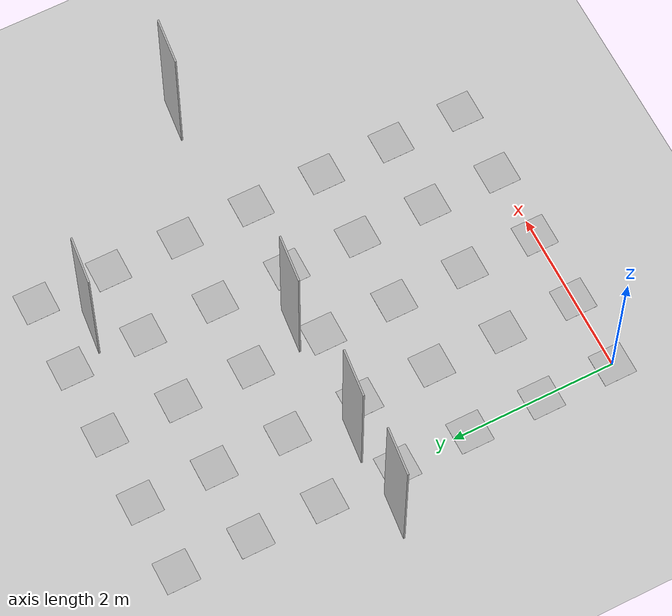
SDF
<?xml version="1.0" ?>
<sdf version="1.6">
  <world name="default">

    <!-- Солнце -->
    <light name="sun" type="directional">
      <cast_shadows>true</cast_shadows>
      <pose>0 0 10 0 0 0</pose>
      <diffuse>0.8 0.8 0.8 1</diffuse>
      <specular>0.2 0.2 0.2 1</specular>
      <attenuation>
        <range>1000</range>
        <constant>0.9</constant>
        <linear>0.01</linear>
        <quadratic>0.001</quadratic>
      </attenuation>
      <direction>-0.5 0.1 -0.9</direction>
    </light>

    <!-- Плоскость земли -->
    <include>
      <uri>model://ground_plane</uri>
    </include>

    <include>
      <uri>model://aruco_model_config</uri>
      <pose>0 0 0 0 0 0</pose>
    </include>

    <include>
      <uri>model://Human1</uri>
      <pose>3 5 0 0 0 102</pose>
    </include>

    <include>
      <uri>model://tree</uri>
      <pose>0.5 3 0 0 0 102</pose>
    </include>

    <include>
      <uri>model://tree</uri>
      <pose>2.0 3 0 0 0 102</pose>
    </include>

    <include>
      <uri>model://tree</uri>
      <pose>-0.5 3 0 0 0 102</pose>
    </include>

    <include>
      <uri>model://tree</uri>
      <pose>5 3 0 0 0 102</pose>
    </include>

  </world>
</sdf>

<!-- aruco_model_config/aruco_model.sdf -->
<sdf version="1.5">
    <model name="aruco_3_35">
        <static>true</static>
        <link name="aruco_3_35_link">

<visual name="visual_marker_3_0">
    <pose>0.0 0.0 0.0 0 0 1.5707963267948966</pose>
    <cast_shadows>false</cast_shadows>
    <geometry>
        <box>
            <size>0.39999999999999997 0.39999999999999997 1e-3</size>
        </box>
    </geometry>
    <material>
        <script>
            <uri>model://aruco_model_config/materials/scripts</uri>
            <uri>model://aruco_model_config/materials/textures</uri>
            <name>aruco/marker_3_0</name>
        </script>
    </material>
</visual>

<visual name="visual_marker_3_1">
    <pose>0.0 0.9 0.0 0 0 1.5707963267948966</pose>
    <cast_shadows>false</cast_shadows>
    <geometry>
        <box>
            <size>0.39999999999999997 0.39999999999999997 1e-3</size>
        </box>
    </geometry>
    <material>
        <script>
            <uri>model://aruco_model_config/materials/scripts</uri>
            <uri>model://aruco_model_config/materials/textures</uri>
            <name>aruco/marker_3_1</name>
        </script>
    </material>
</visual>

<visual name="visual_marker_3_2">
    <pose>0.0 1.8 0.0 0 0 1.5707963267948966</pose>
    <cast_shadows>false</cast_shadows>
    <geometry>
        <box>
            <size>0.39999999999999997 0.39999999999999997 1e-3</size>
        </box>
    </geometry>
    <material>
        <script>
            <uri>model://aruco_model_config/materials/scripts</uri>
            <uri>model://aruco_model_config/materials/textures</uri>
            <name>aruco/marker_3_2</name>
        </script>
    </material>
</visual>

<visual name="visual_marker_3_3">
    <pose>0.0 2.7 0.0 0 0 1.5707963267948966</pose>
    <cast_shadows>false</cast_shadows>
    <geometry>
        <box>
            <size>0.39999999999999997 0.39999999999999997 1e-3</size>
        </box>
    </geometry>
    <material>
        <script>
            <uri>model://aruco_model_config/materials/scripts</uri>
            <uri>model://aruco_model_config/materials/textures</uri>
            <name>aruco/marker_3_3</name>
        </script>
    </material>
</visual>

<visual name="visual_marker_3_4">
    <pose>0.0 3.6 0.0 0 0 1.5707963267948966</pose>
    <cast_shadows>false</cast_shadows>
    <geometry>
        <box>
            <size>0.39999999999999997 0.39999999999999997 1e-3</size>
        </box>
    </geometry>
    <material>
        <script>
            <uri>model://aruco_model_config/materials/scripts</uri>
            <uri>model://aruco_model_config/materials/textures</uri>
            <name>aruco/marker_3_4</name>
        </script>
    </material>
</visual>

<visual name="visual_marker_3_5">
    <pose>0.0 4.5 0.0 0 0 1.5707963267948966</pose>
    <cast_shadows>false</cast_shadows>
    <geometry>
        <box>
            <size>0.39999999999999997 0.39999999999999997 1e-3</size>
        </box>
    </geometry>
    <material>
        <script>
            <uri>model://aruco_model_config/materials/scripts</uri>
            <uri>model://aruco_model_config/materials/textures</uri>
            <name>aruco/marker_3_5</name>
        </script>
    </material>
</visual>

<visual name="visual_marker_3_6">
    <pose>0.0 5.4 0.0 0 0 1.5707963267948966</pose>
    <cast_shadows>false</cast_shadows>
    <geometry>
        <box>
            <size>0.39999999999999997 0.39999999999999997 1e-3</size>
        </box>
    </geometry>
    <material>
        <script>
            <uri>model://aruco_model_config/materials/scripts</uri>
            <uri>model://aruco_model_config/materials/textures</uri>
            <name>aruco/marker_3_6</name>
        </script>
    </material>
</visual>

<visual name="visual_marker_3_7">
    <pose>0.9 0.0 0.0 0 0 1.5707963267948966</pose>
    <cast_shadows>false</cast_shadows>
    <geometry>
        <box>
            <size>0.39999999999999997 0.39999999999999997 1e-3</size>
        </box>
    </geometry>
    <material>
        <script>
            <uri>model://aruco_model_config/materials/scripts</uri>
            <uri>model://aruco_model_config/materials/textures</uri>
            <name>aruco/marker_3_7</name>
        </script>
    </material>
</visual>

<visual name="visual_marker_3_8">
    <pose>0.9 0.9 0.0 0 0 1.5707963267948966</pose>
    <cast_shadows>false</cast_shadows>
    <geometry>
        <box>
            <size>0.39999999999999997 0.39999999999999997 1e-3</size>
        </box>
    </geometry>
    <material>
        <script>
            <uri>model://aruco_model_config/materials/scripts</uri>
            <uri>model://aruco_model_config/materials/textures</uri>
            <name>aruco/marker_3_8</name>
        </script>
    </material>
</visual>

<visual name="visual_marker_3_9">
    <pose>0.9 1.8 0.0 0 0 1.5707963267948966</pose>
    <cast_shadows>false</cast_shadows>
    <geometry>
        <box>
            <size>0.39999999999999997 0.39999999999999997 1e-3</size>
        </box>
    </geometry>
    <material>
        <script>
            <uri>model://aruco_model_config/materials/scripts</uri>
            <uri>model://aruco_model_config/materials/textures</uri>
            <name>aruco/marker_3_9</name>
        </script>
    </material>
</visual>

<visual name="visual_marker_3_10">
    <pose>0.9 2.7 0.0 0 0 1.5707963267948966</pose>
    <cast_shadows>false</cast_shadows>
    <geometry>
        <box>
            <size>0.39999999999999997 0.39999999999999997 1e-3</size>
        </box>
    </geometry>
    <material>
        <script>
            <uri>model://aruco_model_config/materials/scripts</uri>
            <uri>model://aruco_model_config/materials/textures</uri>
            <name>aruco/marker_3_10</name>
        </script>
    </material>
</visual>

<visual name="visual_marker_3_11">
    <pose>0.9 3.6 0.0 0 0 1.5707963267948966</pose>
    <cast_shadows>false</cast_shadows>
    <geometry>
        <box>
            <size>0.39999999999999997 0.39999999999999997 1e-3</size>
        </box>
    </geometry>
    <material>
        <script>
            <uri>model://aruco_model_config/materials/scripts</uri>
            <uri>model://aruco_model_config/materials/textures</uri>
            <name>aruco/marker_3_11</name>
        </script>
    </material>
</visual>

<visual name="visual_marker_3_12">
    <pose>0.9 4.5 0.0 0 0 1.5707963267948966</pose>
    <cast_shadows>false</cast_shadows>
    <geometry>
        <box>
            <size>0.39999999999999997 0.39999999999999997 1e-3</size>
        </box>
    </geometry>
    <material>
        <script>
            <uri>model://aruco_model_config/materials/scripts</uri>
            <uri>model://aruco_model_config/materials/textures</uri>
            <name>aruco/marker_3_12</name>
        </script>
    </material>
</visual>

<visual name="visual_marker_3_13">
    <pose>0.9 5.4 0.0 0 0 1.5707963267948966</pose>
    <cast_shadows>false</cast_shadows>
    <geometry>
        <box>
            <size>0.39999999999999997 0.39999999999999997 1e-3</size>
        </box>
    </geometry>
    <material>
        <script>
            <uri>model://aruco_model_config/materials/scripts</uri>
            <uri>model://aruco_model_config/materials/textures</uri>
            <name>aruco/marker_3_13</name>
        </script>
    </material>
</visual>

<visual name="visual_marker_3_14">
    <pose>1.8 0.0 0.0 0 0 1.5707963267948966</pose>
    <cast_shadows>false</cast_shadows>
    <geometry>
        <box>
            <size>0.39999999999999997 0.39999999999999997 1e-3</size>
        </box>
    </geometry>
    <material>
        <script>
            <uri>model://aruco_model_config/materials/scripts</uri>
            <uri>model://aruco_model_config/materials/textures</uri>
            <name>aruco/marker_3_14</name>
        </script>
    </material>
</visual>

<visual name="visual_marker_3_15">
    <pose>1.8 0.9 0.0 0 0 1.5707963267948966</pose>
    <cast_shadows>false</cast_shadows>
    <geometry>
        <box>
            <size>0.39999999999999997 0.39999999999999997 1e-3</size>
        </box>
    </geometry>
    <material>
        <script>
            <uri>model://aruco_model_config/materials/scripts</uri>
            <uri>model://aruco_model_config/materials/textures</uri>
            <name>aruco/marker_3_15</name>
        </script>
    </material>
</visual>

<visual name="visual_marker_3_16">
    <pose>1.8 1.8 0.0 0 0 1.5707963267948966</pose>
    <cast_shadows>false</cast_shadows>
    <geometry>
        <box>
            <size>0.39999999999999997 0.39999999999999997 1e-3</size>
        </box>
    </geometry>
    <material>
        <script>
            <uri>model://aruco_model_config/materials/scripts</uri>
            <uri>model://aruco_model_config/materials/textures</uri>
            <name>aruco/marker_3_16</name>
        </script>
    </material>
</visual>

<visual name="visual_marker_3_17">
    <pose>1.8 2.7 0.0 0 0 1.5707963267948966</pose>
    <cast_shadows>false</cast_shadows>
    <geometry>
        <box>
            <size>0.39999999999999997 0.39999999999999997 1e-3</size>
        </box>
    </geometry>
    <material>
        <script>
            <uri>model://aruco_model_config/materials/scripts</uri>
            <uri>model://aruco_model_config/materials/textures</uri>
            <name>aruco/marker_3_17</name>
        </script>
    </material>
</visual>

<visual name="visual_marker_3_18">
    <pose>1.8 3.6 0.0 0 0 1.5707963267948966</pose>
    <cast_shadows>false</cast_shadows>
    <geometry>
        <box>
            <size>0.39999999999999997 0.39999999999999997 1e-3</size>
        </box>
    </geometry>
    <material>
        <script>
            <uri>model://aruco_model_config/materials/scripts</uri>
            <uri>model://aruco_model_config/materials/textures</uri>
            <name>aruco/marker_3_18</name>
        </script>
    </material>
</visual>

<visual name="visual_marker_3_19">
    <pose>1.8 4.5 0.0 0 0 1.5707963267948966</pose>
    <cast_shadows>false</cast_shadows>
    <geometry>
        <box>
            <size>0.39999999999999997 0.39999999999999997 1e-3</size>
        </box>
    </geometry>
    <material>
        <script>
            <uri>model://aruco_model_config/materials/scripts</uri>
            <uri>model://aruco_model_config/materials/textures</uri>
            <name>aruco/marker_3_19</name>
        </script>
    </material>
</visual>

<visual name="visual_marker_3_20">
    <pose>1.8 5.4 0.0 0 0 1.5707963267948966</pose>
    <cast_shadows>false</cast_shadows>
    <geometry>
        <box>
            <size>0.39999999999999997 0.39999999999999997 1e-3</size>
        </box>
    </geometry>
    <material>
        <script>
            <uri>model://aruco_model_config/materials/scripts</uri>
            <uri>model://aruco_model_config/materials/textures</uri>
            <name>aruco/marker_3_20</name>
        </script>
    </material>
</visual>

<visual name="visual_marker_3_21">
    <pose>2.7 0.0 0.0 0 0 1.5707963267948966</pose>
    <cast_shadows>false</cast_shadows>
    <geometry>
        <box>
            <size>0.39999999999999997 0.39999999999999997 1e-3</size>
        </box>
    </geometry>
    <material>
        <script>
            <uri>model://aruco_model_config/materials/scripts</uri>
            <uri>model://aruco_model_config/materials/textures</uri>
            <name>aruco/marker_3_21</name>
        </script>
    </material>
</visual>

<visual name="visual_marker_3_22">
    <pose>2.7 0.9 0.0 0 0 1.5707963267948966</pose>
    <cast_shadows>false</cast_shadows>
    <geometry>
        <box>
            <size>0.39999999999999997 0.39999999999999997 1e-3</size>
        </box>
    </geometry>
    <material>
        <script>
            <uri>model://aruco_model_config/materials/scripts</uri>
            <uri>model://aruco_model_config/materials/textures</uri>
            <name>aruco/marker_3_22</name>
        </script>
    </material>
</visual>

<visual name="visual_marker_3_23">
    <pose>2.7 1.8 0.0 0 0 1.5707963267948966</pose>
    <cast_shadows>false</cast_shadows>
    <geometry>
        <box>
            <size>0.39999999999999997 0.39999999999999997 1e-3</size>
        </box>
    </geometry>
    <material>
        <script>
            <uri>model://aruco_model_config/materials/scripts</uri>
            <uri>model://aruco_model_config/materials/textures</uri>
            <name>aruco/marker_3_23</name>
        </script>
    </material>
</visual>

<visual name="visual_marker_3_24">
    <pose>2.7 2.7 0.0 0 0 1.5707963267948966</pose>
    <cast_shadows>false</cast_shadows>
    <geometry>
        <box>
            <size>0.39999999999999997 0.39999999999999997 1e-3</size>
        </box>
    </geometry>
    <material>
        <script>
            <uri>model://aruco_model_config/materials/scripts</uri>
            <uri>model://aruco_model_config/materials/textures</uri>
            <name>aruco/marker_3_24</name>
        </script>
    </material>
</visual>

<visual name="visual_marker_3_25">
    <pose>2.7 3.6 0.0 0 0 1.5707963267948966</pose>
    <cast_shadows>false</cast_shadows>
    <geometry>
        <box>
            <size>0.39999999999999997 0.39999999999999997 1e-3</size>
        </box>
    </geometry>
    <material>
        <script>
            <uri>model://aruco_model_config/materials/scripts</uri>
            <uri>model://aruco_model_config/materials/textures</uri>
            <name>aruco/marker_3_25</name>
        </script>
    </material>
</visual>

<visual name="visual_marker_3_26">
    <pose>2.7 4.5 0.0 0 0 1.5707963267948966</pose>
    <cast_shadows>false</cast_shadows>
    <geometry>
        <box>
            <size>0.39999999999999997 0.39999999999999997 1e-3</size>
        </box>
    </geometry>
    <material>
        <script>
            <uri>model://aruco_model_config/materials/scripts</uri>
            <uri>model://aruco_model_config/materials/textures</uri>
            <name>aruco/marker_3_26</name>
        </script>
    </material>
</visual>

<visual name="visual_marker_3_27">
    <pose>2.7 5.4 0.0 0 0 1.5707963267948966</pose>
    <cast_shadows>false</cast_shadows>
    <geometry>
        <box>
            <size>0.39999999999999997 0.39999999999999997 1e-3</size>
        </box>
    </geometry>
    <material>
        <script>
            <uri>model://aruco_model_config/materials/scripts</uri>
            <uri>model://aruco_model_config/materials/textures</uri>
            <name>aruco/marker_3_27</name>
        </script>
    </material>
</visual>

<visual name="visual_marker_3_28">
    <pose>3.6 0.0 0.0 0 0 1.5707963267948966</pose>
    <cast_shadows>false</cast_shadows>
    <geometry>
        <box>
            <size>0.39999999999999997 0.39999999999999997 1e-3</size>
        </box>
    </geometry>
    <material>
        <script>
            <uri>model://aruco_model_config/materials/scripts</uri>
            <uri>model://aruco_model_config/materials/textures</uri>
            <name>aruco/marker_3_28</name>
        </script>
    </material>
</visual>

<visual name="visual_marker_3_29">
    <pose>3.6 0.9 0.0 0 0 1.5707963267948966</pose>
    <cast_shadows>false</cast_shadows>
    <geometry>
        <box>
            <size>0.39999999999999997 0.39999999999999997 1e-3</size>
        </box>
    </geometry>
    <material>
        <script>
            <uri>model://aruco_model_config/materials/scripts</uri>
            <uri>model://aruco_model_config/materials/textures</uri>
            <name>aruco/marker_3_29</name>
        </script>
    </material>
</visual>

<visual name="visual_marker_3_30">
    <pose>3.6 1.8 0.0 0 0 1.5707963267948966</pose>
    <cast_shadows>false</cast_shadows>
    <geometry>
        <box>
            <size>0.39999999999999997 0.39999999999999997 1e-3</size>
        </box>
    </geometry>
    <material>
        <script>
            <uri>model://aruco_model_config/materials/scripts</uri>
            <uri>model://aruco_model_config/materials/textures</uri>
            <name>aruco/marker_3_30</name>
        </script>
    </material>
</visual>

<visual name="visual_marker_3_31">
    <pose>3.6 2.7 0.0 0 0 1.5707963267948966</pose>
    <cast_shadows>false</cast_shadows>
    <geometry>
        <box>
            <size>0.39999999999999997 0.39999999999999997 1e-3</size>
        </box>
    </geometry>
    <material>
        <script>
            <uri>model://aruco_model_config/materials/scripts</uri>
            <uri>model://aruco_model_config/materials/textures</uri>
            <name>aruco/marker_3_31</name>
        </script>
    </material>
</visual>

<visual name="visual_marker_3_32">
    <pose>3.6 3.6 0.0 0 0 1.5707963267948966</pose>
    <cast_shadows>false</cast_shadows>
    <geometry>
        <box>
            <size>0.39999999999999997 0.39999999999999997 1e-3</size>
        </box>
    </geometry>
    <material>
        <script>
            <uri>model://aruco_model_config/materials/scripts</uri>
            <uri>model://aruco_model_config/materials/textures</uri>
            <name>aruco/marker_3_32</name>
        </script>
    </material>
</visual>

<visual name="visual_marker_3_33">
    <pose>3.6 4.5 0.0 0 0 1.5707963267948966</pose>
    <cast_shadows>false</cast_shadows>
    <geometry>
        <box>
            <size>0.39999999999999997 0.39999999999999997 1e-3</size>
        </box>
    </geometry>
    <material>
        <script>
            <uri>model://aruco_model_config/materials/scripts</uri>
            <uri>model://aruco_model_config/materials/textures</uri>
            <name>aruco/marker_3_33</name>
        </script>
    </material>
</visual>

<visual name="visual_marker_3_34">
    <pose>3.6 5.4 0.0 0 0 1.5707963267948966</pose>
    <cast_shadows>false</cast_shadows>
    <geometry>
        <box>
            <size>0.39999999999999997 0.39999999999999997 1e-3</size>
        </box>
    </geometry>
    <material>
        <script>
            <uri>model://aruco_model_config/materials/scripts</uri>
            <uri>model://aruco_model_config/materials/textures</uri>
            <name>aruco/marker_3_34</name>
        </script>
    </material>
</visual>

        </link>
    </model>
</sdf>

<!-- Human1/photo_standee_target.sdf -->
<sdf version="1.5">
  <model name="human_1">
    <static>true</static>
    <link name="human_1">
      <!-- Pose of the link relative to the model:
           x y z roll pitch yaw -->
      <pose>0 0 0.915 0 0 0</pose>

      <!-- Collision is REQUIRED if you want front_rangefinder / lidar / ray sensors
           to measure the target distance. -->
      <collision name="human_1_collision">
        <geometry>
          <box>
            <!-- thickness width height -->
            <size>0.02 0.57 1.83</size>
          </box>
        </geometry>
        <surface>
          <contact>
            <collide_without_contact>true</collide_without_contact>
          </contact>
        </surface>
      </collision>

      <!-- Visual textured face -->
      <visual name="human_1_visual">
        <cast_shadows>false</cast_shadows>
        <geometry>
          <box>
            <size>0.02 0.57 1.83</size>
          </box>
        </geometry>
        <material>
          <script>
            <uri>model://Human1/materials/scripts</uri>
            <uri>model://Human1/materials/textures</uri>
            <name>human_1</name>
          </script>
        </material>
      </visual>
    </link>
    <plugin name="human_controller" filename="libgazebo_ros_planar_move.so">
      <robotNamespace>Human</robotNamespace>
      <commandTopic>cmd_vel</commandTopic>
      <robotBaseFrame>link</robotBaseFrame>
    </plugin>
  </model>
</sdf>

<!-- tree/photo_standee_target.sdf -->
<sdf version="1.5">
  <model name="tree">
    <static>true</static>
    <link name="tree">
      <!-- Pose of the link relative to the model:
           x y z roll pitch yaw -->
      <pose>0 0 0.915 0 0 0</pose>

      <!-- Collision is REQUIRED if you want front_rangefinder / lidar / ray sensors
           to measure the target distance. -->
      <collision name="tree_collision">
        <geometry>
          <box>
            <!-- thickness width height -->
            <size>0.02 0.57 1.83</size>
          </box>
        </geometry>
        <surface>
          <contact>
            <collide_without_contact>true</collide_without_contact>
          </contact>
        </surface>
      </collision>

      <!-- Visual textured face -->
      <visual name="tree_visual">
        <cast_shadows>false</cast_shadows>
        <geometry>
          <box>
            <size>0.02 0.57 1.83</size>
          </box>
        </geometry>
        <material>
          <script>
            <uri>model://tree/materials/scripts</uri>
            <uri>model://tree/materials/textures</uri>
            <name>tree</name>
          </script>
        </material>
      </visual>
    </link>
  </model>
</sdf>
